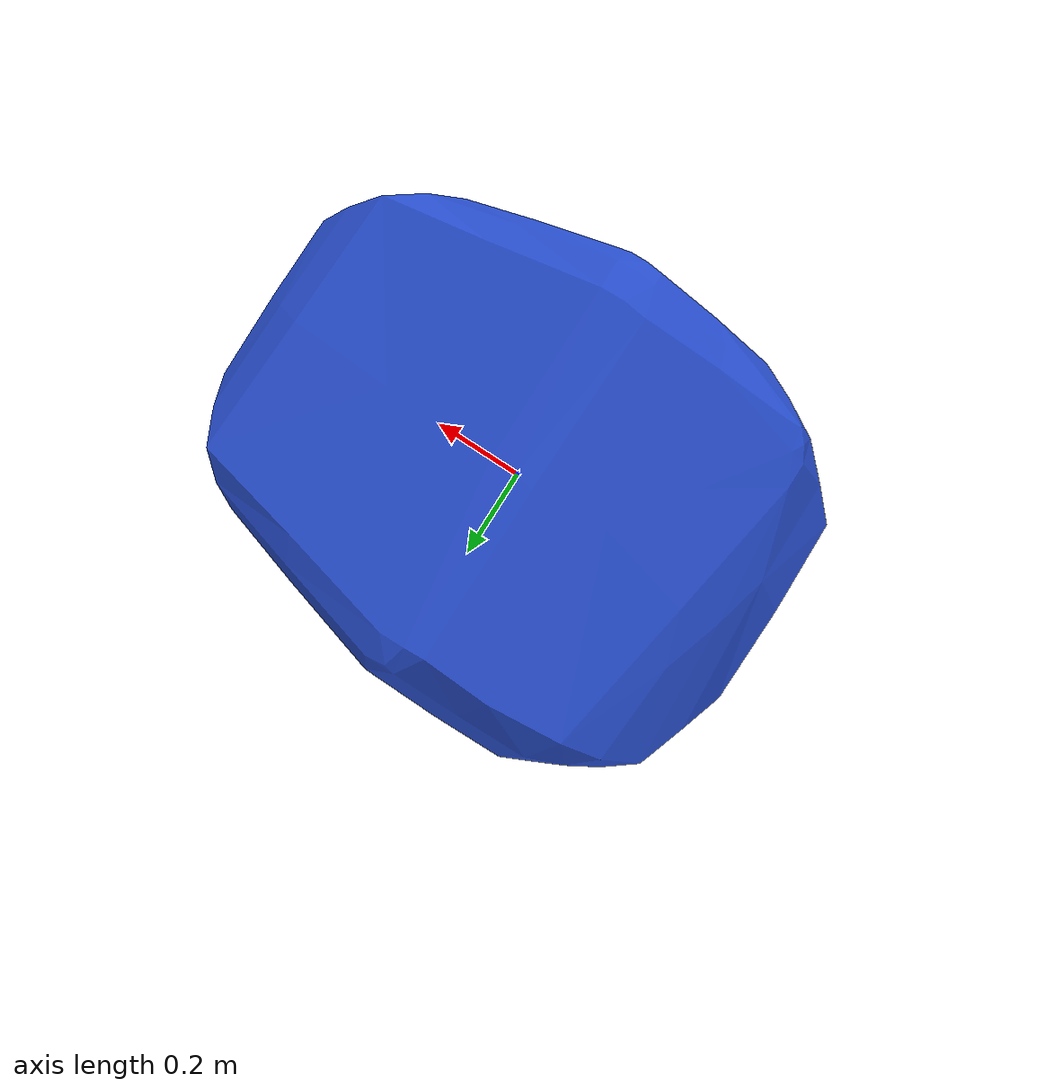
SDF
<?xml version='1.0'?>
<sdf version='1.5'>
  <model name='obstacle1'>
    <link name='link_1'>
      <gravity>0</gravity>
      <inertial>

        <mass>1</mass>
        <pose frame=''>0 0 0 0 0 0</pose>
        <inertia>
          <ixx>0</ixx>
          <ixy>0</ixy>
          <ixz>0</ixz>
          <iyy>0</iyy>
          <iyz>0</iyz>
          <izz>0</izz>
        </inertia>
      </inertial>
      <visual name='visual'>
        <geometry>
          <mesh>
            <uri>model://obstacle1/meshes/stein1.stl</uri>
            <scale>1 1 1</scale>
          </mesh>
        </geometry>
        <material>
          <lighting>1</lighting>
          <script>
            <uri>file://media/materials/scripts/gazebo.material</uri>
            <name>Gazebo/Blue</name>
          </script>
        </material>
        <cast_shadows>1</cast_shadows>
        <transparency>0</transparency>
      </visual>
      <collision name='collision'>
        <geometry>
            <cylinder>
              <radius>.40</radius>
              <length>.30</length>
            </cylinder>
        </geometry>
      </collision>
    </link>
    <static>0</static>
    <allow_auto_disable>1</allow_auto_disable>
  <!--plugin name="PositionPlugin" filename="libPositionPlugin.so"/-->
  </model>
</sdf>
